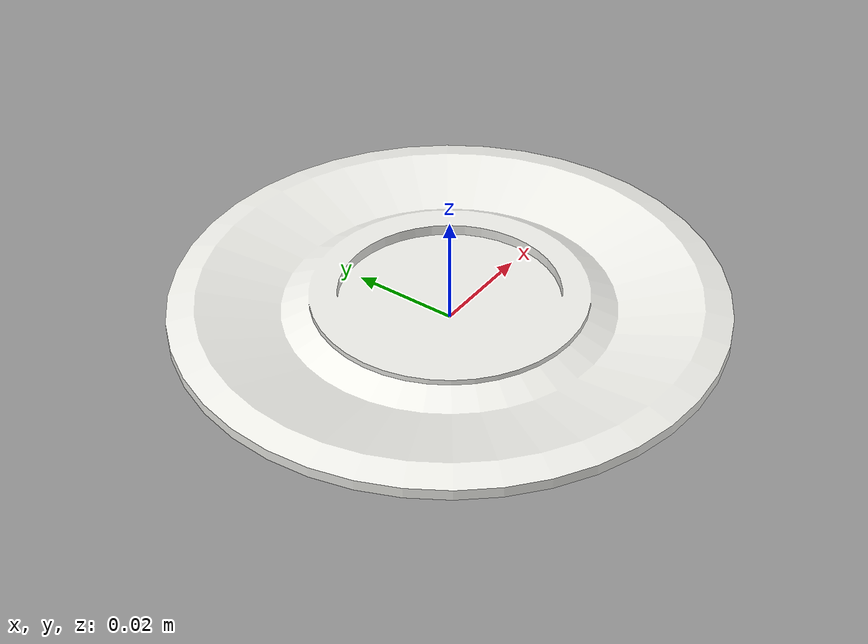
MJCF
<mujoco model="Saucer_3">
  <default>
    <default class="visual">
      <geom group="2" type="mesh" contype="0" conaffinity="0"/>
    </default>
    <default class="collision">
      <geom group="3" type="mesh"/>
    </default>
  </default>
  <asset>
    <material name="Porcelain_White" specular="0.5" shininess="0.672400024" rgba="0.940000 0.940000 0.920000 1.000000"/>
    <mesh file="Saucer_3.obj"/>
    <mesh file="Saucer_3_collision_0.obj"/>
    <mesh file="Saucer_3_collision_1.obj"/>
    <mesh file="Saucer_3_collision_2.obj"/>
    <mesh file="Saucer_3_collision_3.obj"/>
    <mesh file="Saucer_3_collision_4.obj"/>
    <mesh file="Saucer_3_collision_5.obj"/>
    <mesh file="Saucer_3_collision_6.obj"/>
    <mesh file="Saucer_3_collision_7.obj"/>
    <mesh file="Saucer_3_collision_8.obj"/>
    <mesh file="Saucer_3_collision_9.obj"/>
    <mesh file="Saucer_3_collision_10.obj"/>
    <mesh file="Saucer_3_collision_11.obj"/>
    <mesh file="Saucer_3_collision_12.obj"/>
    <mesh file="Saucer_3_collision_13.obj"/>
    <mesh file="Saucer_3_collision_14.obj"/>
    <mesh file="Saucer_3_collision_15.obj"/>
  </asset>
  <worldbody>
    <body name="Saucer_3">
      <geom material="Porcelain_White" mesh="Saucer_3" class="visual"/>
      <geom mesh="Saucer_3_collision_0" rgba="0.22707887559591466 0.08287461563326404 0.06561282040268901 1" class="collision"/>
      <geom mesh="Saucer_3_collision_1" rgba="0.6354788673717996 0.4633872879131683 0.03130744345153036 1" class="collision"/>
      <geom mesh="Saucer_3_collision_2" rgba="0.9025405747833762 0.14709609758679676 0.08129461313708997 1" class="collision"/>
      <geom mesh="Saucer_3_collision_3" rgba="0.27782061219750387 0.3292617841199117 0.3207331698577296 1" class="collision"/>
      <geom mesh="Saucer_3_collision_4" rgba="0.8690270006169385 0.24731341204518165 0.22347897127067728 1" class="collision"/>
      <geom mesh="Saucer_3_collision_5" rgba="0.5676765762947819 0.9813830999519213 0.32458317128670966 1" class="collision"/>
      <geom mesh="Saucer_3_collision_6" rgba="0.3139897179476372 0.8643007915171672 0.07574150173480176 1" class="collision"/>
      <geom mesh="Saucer_3_collision_7" rgba="0.9822218711237757 0.396987729279778 0.18806923658346675 1" class="collision"/>
      <geom mesh="Saucer_3_collision_8" rgba="0.601202715275803 0.04906480692643511 0.25439999965453397 1" class="collision"/>
      <geom mesh="Saucer_3_collision_9" rgba="0.8721739457234502 0.7345737849676618 0.3155757476941251 1" class="collision"/>
      <geom mesh="Saucer_3_collision_10" rgba="0.7065854210054979 0.39140513382083686 0.012499491440540633 1" class="collision"/>
      <geom mesh="Saucer_3_collision_11" rgba="0.10279768988421922 0.36078891657216416 0.24747395314488851 1" class="collision"/>
      <geom mesh="Saucer_3_collision_12" rgba="0.37153674807259973 0.9846526127590635 0.4044263845772701 1" class="collision"/>
      <geom mesh="Saucer_3_collision_13" rgba="0.3776713378102635 0.03681423481199675 0.9693635144947175 1" class="collision"/>
      <geom mesh="Saucer_3_collision_14" rgba="0.7203666841405928 0.6583432192630225 0.7837062314896976 1" class="collision"/>
      <geom mesh="Saucer_3_collision_15" rgba="0.8342779655973122 0.9157046645369671 0.05975017055220666 1" class="collision"/>
    </body>
  </worldbody>
</mujoco>
